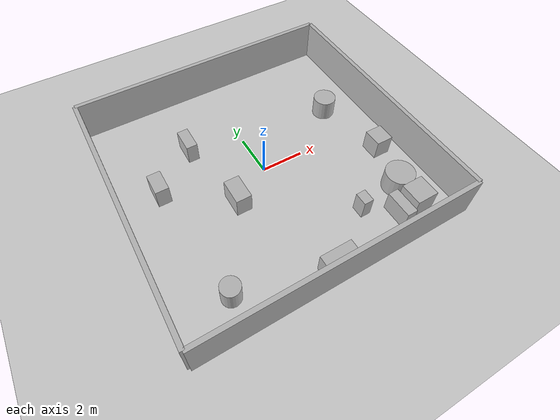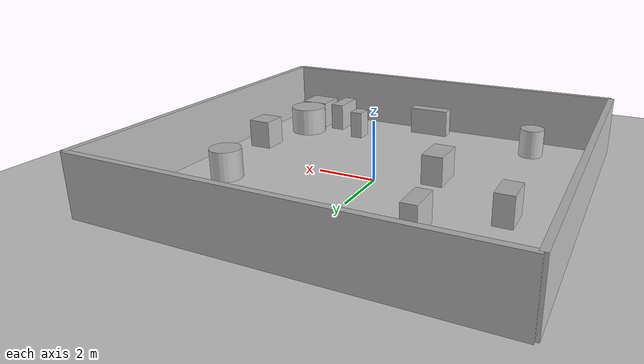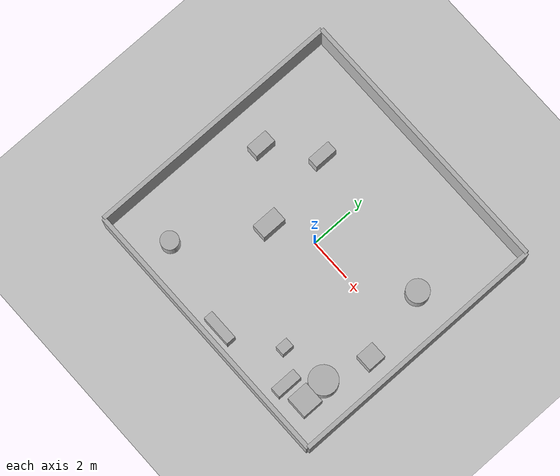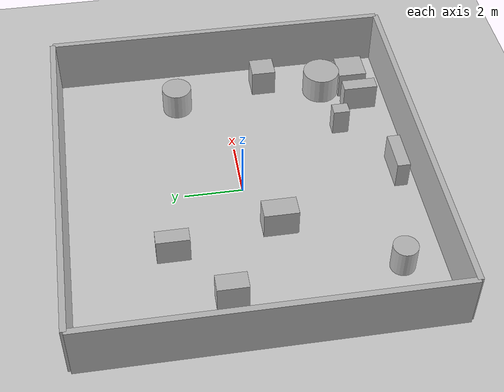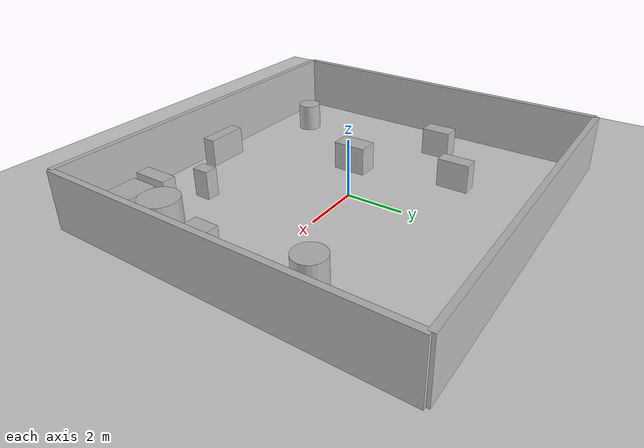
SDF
<?xml version="1.0"?>
<sdf version="1.6">
  <world name="env_59">

    <include><uri>model://ground_plane</uri></include>
    <include><uri>model://sun</uri></include>

    <!-- WALLS -->
    <model name="wall_north"><static>true</static><pose>0 6.092665765374743 1 0 0 0</pose>
      <link name="link"><collision name="collision">
        <geometry><box><size>12.813522136906851 0.2 2</size></box></geometry>
      </collision><visual name="visual">
        <geometry><box><size>12.813522136906851 0.2 2</size></box></geometry>
      </visual></link>
    </model>

    <model name="wall_south"><static>true</static><pose>0 -6.092665765374743 1 0 0 0</pose>
      <link name="link"><collision name="collision">
        <geometry><box><size>12.813522136906851 0.2 2</size></box></geometry>
      </collision><visual name="visual">
        <geometry><box><size>12.813522136906851 0.2 2</size></box></geometry>
      </visual></link>
    </model>

    <model name="wall_east"><static>true</static><pose>6.4067610684534255 0 1 0 0 1.57</pose>
      <link name="link"><collision name="collision">
        <geometry><box><size>12.185331530749487 0.2 2</size></box></geometry>
      </collision><visual name="visual">
        <geometry><box><size>12.185331530749487 0.2 2</size></box></geometry>
      </visual></link>
    </model>

    <model name="wall_west"><static>true</static><pose>-6.4067610684534255 0 1 0 0 1.57</pose>
      <link name="link"><collision name="collision">
        <geometry><box><size>12.185331530749487 0.2 2</size></box></geometry>
      </collision><visual name="visual">
        <geometry><box><size>12.185331530749487 0.2 2</size></box></geometry>
      </visual></link>
    </model>

    <!-- SENSOR -->

    <model name="lidar_sensor">
      <static>true</static>
      <pose>-2.1798303328875788 3.710995282076686 0.4 0 0 0</pose>
      <link name="link">
        <sensor name="lidar" type="ray">
          <pose>0 0 0 0 0 0</pose>
          <visualize>true</visualize>
          <always_on>true</always_on>
          <update_rate>10</update_rate>
          <ray>
            <scan><horizontal>
              <samples>240</samples>
              <resolution>1</resolution>
              <min_angle>-3.14159</min_angle>
              <max_angle>3.14159</max_angle>
            </horizontal></scan>
            <range><min>0.15</min><max>20.0</max><resolution>0.01</resolution></range>
          </ray>
          <plugin name="lidar_plugin" filename="liblidar_plugin.so"/>
        </sensor>
      </link>
    </model>

    <!-- OBSTACLES -->

    <model name="obstacle_0">
      <static>true</static>
      <pose>4.772218555031532 -4.80272608057976 0.5 0 0 0</pose>
      <link name="link">
        <collision name="collision">
          <geometry><box><size>1.03 1.01 1.0</size></box></geometry>
        </collision>
        <visual name="visual">
          <geometry><box><size>1.03 1.01 1.0</size></box></geometry>
        </visual>
      </link>
    </model>

    <model name="obstacle_1">
      <static>true</static>
      <pose>5.239495198744882 -1.5406764879177697 0.5 0 0 0</pose>
      <link name="link">
        <collision name="collision">
          <geometry><box><size>0.81 0.86 1.0</size></box></geometry>
        </collision>
        <visual name="visual">
          <geometry><box><size>0.81 0.86 1.0</size></box></geometry>
        </visual>
      </link>
    </model>

    <model name="obstacle_2">
      <static>true</static>
      <pose>-4.042766065038485 -4.586049721699302 0.5 0 0 0</pose>
      <link name="link">
        <collision name="collision">
          <geometry><cylinder><radius>0.42</radius><length>1.0</length></cylinder></geometry>
        </collision>
        <visual name="visual">
          <geometry><cylinder><radius>0.42</radius><length>1.0</length></cylinder></geometry>
        </visual>
      </link>
    </model>

    <model name="obstacle_3">
      <static>true</static>
      <pose>0.1319913264663901 -5.460605485950297 0.5 0 0 0</pose>
      <link name="link">
        <collision name="collision">
          <geometry><box><size>1.46 0.45 1.0</size></box></geometry>
        </collision>
        <visual name="visual">
          <geometry><box><size>1.46 0.45 1.0</size></box></geometry>
        </visual>
      </link>
    </model>

    <model name="obstacle_4">
      <static>true</static>
      <pose>3.725190392074227 -4.92736820780456 0.5 0 0 0</pose>
      <link name="link">
        <collision name="collision">
          <geometry><box><size>0.49 1.22 1.0</size></box></geometry>
        </collision>
        <visual name="visual">
          <geometry><box><size>0.49 1.22 1.0</size></box></geometry>
        </visual>
      </link>
    </model>

    <model name="obstacle_5">
      <static>true</static>
      <pose>-1.823692416868556 -0.9593771771421418 0.5 0 0 0</pose>
      <link name="link">
        <collision name="collision">
          <geometry><box><size>0.71 1.18 1.0</size></box></geometry>
        </collision>
        <visual name="visual">
          <geometry><box><size>0.71 1.18 1.0</size></box></geometry>
        </visual>
      </link>
    </model>

    <model name="obstacle_6">
      <static>true</static>
      <pose>4.6665401722619535 -3.685893505974086 0.5 0 0 0</pose>
      <link name="link">
        <collision name="collision">
          <geometry><cylinder><radius>0.66</radius><length>1.0</length></cylinder></geometry>
        </collision>
        <visual name="visual">
          <geometry><cylinder><radius>0.66</radius><length>1.0</length></cylinder></geometry>
        </visual>
      </link>
    </model>

    <model name="obstacle_7">
      <static>true</static>
      <pose>-2.5176063866431173 2.6609333044352503 0.5 0 0 0</pose>
      <link name="link">
        <collision name="collision">
          <geometry><box><size>0.51 1.11 1.0</size></box></geometry>
        </collision>
        <visual name="visual">
          <geometry><box><size>0.51 1.11 1.0</size></box></geometry>
        </visual>
      </link>
    </model>

    <model name="obstacle_8">
      <static>true</static>
      <pose>-4.593693590914746 1.035704304775968 0.5 0 0 0</pose>
      <link name="link">
        <collision name="collision">
          <geometry><box><size>0.61 1.03 1.0</size></box></geometry>
        </collision>
        <visual name="visual">
          <geometry><box><size>0.61 1.03 1.0</size></box></geometry>
        </visual>
      </link>
    </model>

    <model name="obstacle_9">
      <static>true</static>
      <pose>2.5335198355273914 -3.9530559833433063 0.5 0 0 0</pose>
      <link name="link">
        <collision name="collision">
          <geometry><box><size>0.45 0.58 1.0</size></box></geometry>
        </collision>
        <visual name="visual">
          <geometry><box><size>0.45 0.58 1.0</size></box></geometry>
        </visual>
      </link>
    </model>

    <model name="obstacle_10">
      <static>true</static>
      <pose>4.499160967001874 1.7652584877346857 0.5 0 0 0</pose>
      <link name="link">
        <collision name="collision">
          <geometry><cylinder><radius>0.53</radius><length>1.0</length></cylinder></geometry>
        </collision>
        <visual name="visual">
          <geometry><cylinder><radius>0.53</radius><length>1.0</length></cylinder></geometry>
        </visual>
      </link>
    </model>

  </world>
</sdf>
